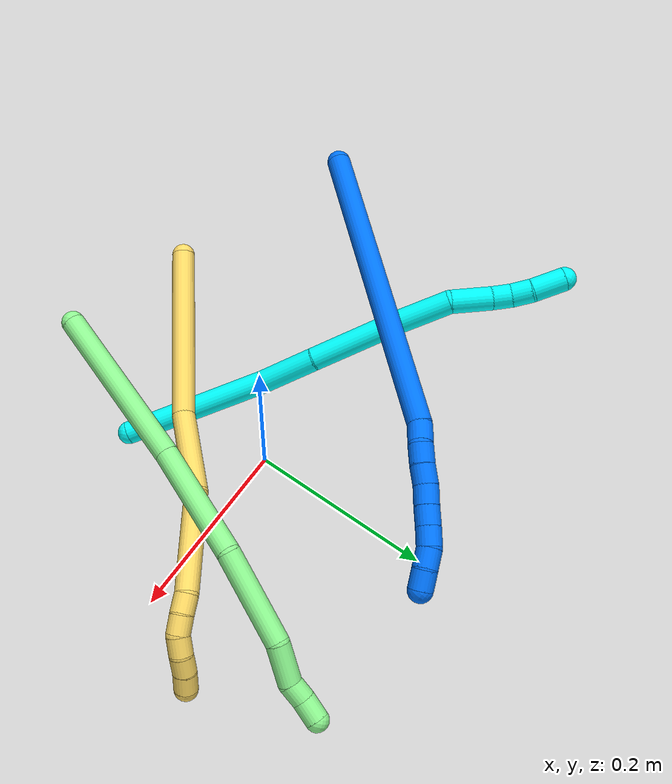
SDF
<sdf version="1.7">
 <world name="default">
  <model name="3">
   <static>0</static>
   <link name="3">
    <collision name="collision-cylinder-e_1_1_4">
     <pose>-0.04315 0.051073 0.043244 -0.868223 -0.572697 0.271332</pose>
     <geometry><cylinder><radius>0.0125</radius><length>0.159253</length></cylinder></geometry>
     <surface>
      <friction><ode><mu>1.16</mu><mu2>1.16</mu2><slip1>0</slip1><slip2>0</slip2></ode></friction>
      <contact><ode><kp>1e+06</kp><kd>1</kd><max_vel>0</max_vel><min_depth>0.001</min_depth></ode></contact>
     </surface>
    </collision>
    <visual name="visual-cylinder-e_1_1_4">
     <pose>-0.04315 0.051073 0.043244 -0.868223 -0.572697 0.271332</pose>
     <geometry><cylinder><radius>0.0125</radius><length>0.159253</length></cylinder></geometry>
     <material><ambient>0.003922 1 0.996078 1</ambient></material>
    </visual>
    <collision name="collision-cylinder-e_2_4_5">
     <pose>-0.100035 0.125413 0.102408 -0.970688 -0.453358 0.242103</pose>
     <geometry><cylinder><radius>0.0125</radius><length>0.062722</length></cylinder></geometry>
     <surface>
      <friction><ode><mu>1.16</mu><mu2>1.16</mu2><slip1>0</slip1><slip2>0</slip2></ode></friction>
      <contact><ode><kp>1e+06</kp><kd>1</kd><max_vel>0</max_vel><min_depth>0.001</min_depth></ode></contact>
     </surface>
    </collision>
    <visual name="visual-cylinder-e_2_4_5">
     <pose>-0.100035 0.125413 0.102408 -0.970688 -0.453358 0.242103</pose>
     <geometry><cylinder><radius>0.0125</radius><length>0.062722</length></cylinder></geometry>
     <material><ambient>0.003922 1 0.996078 1</ambient></material>
    </visual>
    <collision name="collision-cylinder-e_3_5_6">
     <pose>-0.13744 0.180108 0.145463 -0.858603 -0.51813 0.24146</pose>
     <geometry><cylinder><radius>0.0125</radius><length>0.095587</length></cylinder></geometry>
     <surface>
      <friction><ode><mu>1.16</mu><mu2>1.16</mu2><slip1>0</slip1><slip2>0</slip2></ode></friction>
      <contact><ode><kp>1e+06</kp><kd>1</kd><max_vel>0</max_vel><min_depth>0.001</min_depth></ode></contact>
     </surface>
    </collision>
    <visual name="visual-cylinder-e_3_5_6">
     <pose>-0.13744 0.180108 0.145463 -0.858603 -0.51813 0.24146</pose>
     <geometry><cylinder><radius>0.0125</radius><length>0.095587</length></cylinder></geometry>
     <material><ambient>0.003922 1 0.996078 1</ambient></material>
    </visual>
    <collision name="collision-cylinder-e_4_6_7">
     <pose>-0.176589 0.23217 0.188396 -0.917323 -0.537195 0.270171</pose>
     <geometry><cylinder><radius>0.0125</radius><length>0.060496</length></cylinder></geometry>
     <surface>
      <friction><ode><mu>1.16</mu><mu2>1.16</mu2><slip1>0</slip1><slip2>0</slip2></ode></friction>
      <contact><ode><kp>1e+06</kp><kd>1</kd><max_vel>0</max_vel><min_depth>0.001</min_depth></ode></contact>
     </surface>
    </collision>
    <visual name="visual-cylinder-e_4_6_7">
     <pose>-0.176589 0.23217 0.188396 -0.917323 -0.537195 0.270171</pose>
     <geometry><cylinder><radius>0.0125</radius><length>0.060496</length></cylinder></geometry>
     <material><ambient>0.003922 1 0.996078 1</ambient></material>
    </visual>
    <collision name="collision-cylinder-e_5_7_8">
     <pose>-0.209404 0.26258 0.21348 -0.811181 -0.909745 0.414003</pose>
     <geometry><cylinder><radius>0.0125</radius><length>0.043924</length></cylinder></geometry>
     <surface>
      <friction><ode><mu>1.16</mu><mu2>1.16</mu2><slip1>0</slip1><slip2>0</slip2></ode></friction>
      <contact><ode><kp>1e+06</kp><kd>1</kd><max_vel>0</max_vel><min_depth>0.001</min_depth></ode></contact>
     </surface>
    </collision>
    <visual name="visual-cylinder-e_5_7_8">
     <pose>-0.209404 0.26258 0.21348 -0.811181 -0.909745 0.414003</pose>
     <geometry><cylinder><radius>0.0125</radius><length>0.043924</length></cylinder></geometry>
     <material><ambient>0.003922 1 0.996078 1</ambient></material>
    </visual>
    <collision name="collision-cylinder-e_6_8_9">
     <pose>-0.234514 0.277788 0.227289 -0.876332 -0.833021 0.408771</pose>
     <geometry><cylinder><radius>0.0125</radius><length>0.021015</length></cylinder></geometry>
     <surface>
      <friction><ode><mu>1.16</mu><mu2>1.16</mu2><slip1>0</slip1><slip2>0</slip2></ode></friction>
      <contact><ode><kp>1e+06</kp><kd>1</kd><max_vel>0</max_vel><min_depth>0.001</min_depth></ode></contact>
     </surface>
    </collision>
    <visual name="visual-cylinder-e_6_8_9">
     <pose>-0.234514 0.277788 0.227289 -0.876332 -0.833021 0.408771</pose>
     <geometry><cylinder><radius>0.0125</radius><length>0.021015</length></cylinder></geometry>
     <material><ambient>0.003922 1 0.996078 1</ambient></material>
    </visual>
    <collision name="collision-cylinder-e_7_9_10">
     <pose>-0.248955 0.290597 0.236529 -1.00197 -0.650598 0.365262</pose>
     <geometry><cylinder><radius>0.0125</radius><length>0.022012</length></cylinder></geometry>
     <surface>
      <friction><ode><mu>1.16</mu><mu2>1.16</mu2><slip1>0</slip1><slip2>0</slip2></ode></friction>
      <contact><ode><kp>1e+06</kp><kd>1</kd><max_vel>0</max_vel><min_depth>0.001</min_depth></ode></contact>
     </surface>
    </collision>
    <visual name="visual-cylinder-e_7_9_10">
     <pose>-0.248955 0.290597 0.236529 -1.00197 -0.650598 0.365262</pose>
     <geometry><cylinder><radius>0.0125</radius><length>0.022012</length></cylinder></geometry>
     <material><ambient>0.003922 1 0.996078 1</ambient></material>
    </visual>
    <collision name="collision-cylinder-e_8_10_2">
     <pose>-0.265994 0.307847 0.2513 -0.776215 -0.634619 0.266937</pose>
     <geometry><cylinder><radius>0.0125</radius><length>0.034992</length></cylinder></geometry>
     <surface>
      <friction><ode><mu>1.16</mu><mu2>1.16</mu2><slip1>0</slip1><slip2>0</slip2></ode></friction>
      <contact><ode><kp>1e+06</kp><kd>1</kd><max_vel>0</max_vel><min_depth>0.001</min_depth></ode></contact>
     </surface>
    </collision>
    <visual name="visual-cylinder-e_8_10_2">
     <pose>-0.265994 0.307847 0.2513 -0.776215 -0.634619 0.266937</pose>
     <geometry><cylinder><radius>0.0125</radius><length>0.034992</length></cylinder></geometry>
     <material><ambient>0.003922 1 0.996078 1</ambient></material>
    </visual>
    <collision name="collision-sphere-2">
     <pose>-0.276367 0.317718 0.261354 0 -0 0</pose>
     <geometry><sphere><radius>0.0125</radius></sphere></geometry>
     <surface>
      <friction><ode><mu>1.16</mu><mu2>1.16</mu2><slip1>0</slip1><slip2>0</slip2></ode></friction>
      <contact><ode><kp>1e+06</kp><kd>1</kd><max_vel>0</max_vel><min_depth>0.001</min_depth></ode></contact>
     </surface>
    </collision>
    <visual name="visual-sphere-2">
     <pose>-0.276367 0.317718 0.261354 0 -0 0</pose>
     <geometry><sphere><radius>0.0125</radius></sphere></geometry>
     <material><ambient>0.003922 1 0.996078 1</ambient></material>
    </visual>
    <collision name="collision-sphere-10">
     <pose>-0.255621 0.297976 0.241246 0 -0 0</pose>
     <geometry><sphere><radius>0.0125</radius></sphere></geometry>
     <surface>
      <friction><ode><mu>1.16</mu><mu2>1.16</mu2><slip1>0</slip1><slip2>0</slip2></ode></friction>
      <contact><ode><kp>1e+06</kp><kd>1</kd><max_vel>0</max_vel><min_depth>0.001</min_depth></ode></contact>
     </surface>
    </collision>
    <visual name="visual-sphere-10">
     <pose>-0.255621 0.297976 0.241246 0 -0 0</pose>
     <geometry><sphere><radius>0.0125</radius></sphere></geometry>
     <material><ambient>0.003922 1 0.996078 1</ambient></material>
    </visual>
    <collision name="collision-sphere-9">
     <pose>-0.242289 0.283219 0.231812 0 -0 0</pose>
     <geometry><sphere><radius>0.0125</radius></sphere></geometry>
     <surface>
      <friction><ode><mu>1.16</mu><mu2>1.16</mu2><slip1>0</slip1><slip2>0</slip2></ode></friction>
      <contact><ode><kp>1e+06</kp><kd>1</kd><max_vel>0</max_vel><min_depth>0.001</min_depth></ode></contact>
     </surface>
    </collision>
    <visual name="visual-sphere-9">
     <pose>-0.242289 0.283219 0.231812 0 -0 0</pose>
     <geometry><sphere><radius>0.0125</radius></sphere></geometry>
     <material><ambient>0.003922 1 0.996078 1</ambient></material>
    </visual>
    <collision name="collision-sphere-4">
     <pose>-0.086299 0.102146 0.086487 0 -0 0</pose>
     <geometry><sphere><radius>0.0125</radius></sphere></geometry>
     <surface>
      <friction><ode><mu>1.16</mu><mu2>1.16</mu2><slip1>0</slip1><slip2>0</slip2></ode></friction>
      <contact><ode><kp>1e+06</kp><kd>1</kd><max_vel>0</max_vel><min_depth>0.001</min_depth></ode></contact>
     </surface>
    </collision>
    <visual name="visual-sphere-4">
     <pose>-0.086299 0.102146 0.086487 0 -0 0</pose>
     <geometry><sphere><radius>0.0125</radius></sphere></geometry>
     <material><ambient>0.003922 1 0.996078 1</ambient></material>
    </visual>
    <collision name="collision-sphere-1">
     <geometry><sphere><radius>0.0125</radius></sphere></geometry>
     <surface>
      <friction><ode><mu>1.16</mu><mu2>1.16</mu2><slip1>0</slip1><slip2>0</slip2></ode></friction>
      <contact><ode><kp>1e+06</kp><kd>1</kd><max_vel>0</max_vel><min_depth>0.001</min_depth></ode></contact>
     </surface>
    </collision>
    <visual name="visual-sphere-1">
     <geometry><sphere><radius>0.0125</radius></sphere></geometry>
     <material><ambient>0.003922 1 0.996078 1</ambient></material>
    </visual>
    <collision name="collision-sphere-8">
     <pose>-0.226739 0.272357 0.222765 0 -0 0</pose>
     <geometry><sphere><radius>0.0125</radius></sphere></geometry>
     <surface>
      <friction><ode><mu>1.16</mu><mu2>1.16</mu2><slip1>0</slip1><slip2>0</slip2></ode></friction>
      <contact><ode><kp>1e+06</kp><kd>1</kd><max_vel>0</max_vel><min_depth>0.001</min_depth></ode></contact>
     </surface>
    </collision>
    <visual name="visual-sphere-8">
     <pose>-0.226739 0.272357 0.222765 0 -0 0</pose>
     <geometry><sphere><radius>0.0125</radius></sphere></geometry>
     <material><ambient>0.003922 1 0.996078 1</ambient></material>
    </visual>
    <collision name="collision-sphere-5">
     <pose>-0.11377 0.14868 0.11833 0 -0 0</pose>
     <geometry><sphere><radius>0.0125</radius></sphere></geometry>
     <surface>
      <friction><ode><mu>1.16</mu><mu2>1.16</mu2><slip1>0</slip1><slip2>0</slip2></ode></friction>
      <contact><ode><kp>1e+06</kp><kd>1</kd><max_vel>0</max_vel><min_depth>0.001</min_depth></ode></contact>
     </surface>
    </collision>
    <visual name="visual-sphere-5">
     <pose>-0.11377 0.14868 0.11833 0 -0 0</pose>
     <geometry><sphere><radius>0.0125</radius></sphere></geometry>
     <material><ambient>0.003922 1 0.996078 1</ambient></material>
    </visual>
    <collision name="collision-sphere-6">
     <pose>-0.161111 0.211536 0.172597 0 -0 0</pose>
     <geometry><sphere><radius>0.0125</radius></sphere></geometry>
     <surface>
      <friction><ode><mu>1.16</mu><mu2>1.16</mu2><slip1>0</slip1><slip2>0</slip2></ode></friction>
      <contact><ode><kp>1e+06</kp><kd>1</kd><max_vel>0</max_vel><min_depth>0.001</min_depth></ode></contact>
     </surface>
    </collision>
    <visual name="visual-sphere-6">
     <pose>-0.161111 0.211536 0.172597 0 -0 0</pose>
     <geometry><sphere><radius>0.0125</radius></sphere></geometry>
     <material><ambient>0.003922 1 0.996078 1</ambient></material>
    </visual>
    <collision name="collision-sphere-7">
     <pose>-0.192068 0.252803 0.204195 0 -0 0</pose>
     <geometry><sphere><radius>0.0125</radius></sphere></geometry>
     <surface>
      <friction><ode><mu>1.16</mu><mu2>1.16</mu2><slip1>0</slip1><slip2>0</slip2></ode></friction>
      <contact><ode><kp>1e+06</kp><kd>1</kd><max_vel>0</max_vel><min_depth>0.001</min_depth></ode></contact>
     </surface>
    </collision>
    <visual name="visual-sphere-7">
     <pose>-0.192068 0.252803 0.204195 0 -0 0</pose>
     <geometry><sphere><radius>0.0125</radius></sphere></geometry>
     <material><ambient>0.003922 1 0.996078 1</ambient></material>
    </visual>
    <inertial>
     <pose>-0.13176 0.163602 0.133529 0 -0 0</pose>
     <mass>0.5</mass>
     <inertia>
      <ixx>0.000476</ixx>
      <ixy>0</ixy>
      <ixz>0</ixz>
      <iyy>0.000482</iyy>
      <iyz>0</iyz>
      <izz>-3.3e-05</izz>
     </inertia>
    </inertial>
   </link>
   <pose>0.064981 -0.137674 0.011483 1.52683 -0.550868 -1.25095</pose>
  </model>
  <model name="5">
   <static>0</static>
   <link name="5">
    <collision name="collision-cylinder-e_1_1_4">
     <pose>0.093941 -0.005256 0.023952 0.216005 1.31546 0.167119</pose>
     <geometry><cylinder><radius>0.0125</radius><length>0.194177</length></cylinder></geometry>
     <surface>
      <friction><ode><mu>1.16</mu><mu2>1.16</mu2><slip1>0</slip1><slip2>0</slip2></ode></friction>
      <contact><ode><kp>1e+06</kp><kd>1</kd><max_vel>0</max_vel><min_depth>0.001</min_depth></ode></contact>
     </surface>
    </collision>
    <visual name="visual-cylinder-e_1_1_4">
     <pose>0.093941 -0.005256 0.023952 0.216005 1.31546 0.167119</pose>
     <geometry><cylinder><radius>0.0125</radius><length>0.194177</length></cylinder></geometry>
     <material><ambient>1 0.858824 0.4 1</ambient></material>
    </visual>
    <collision name="collision-cylinder-e_2_4_5">
     <pose>0.234051 -0.005757 0.052256 -0.829705 1.4321 -0.731889</pose>
     <geometry><cylinder><radius>0.0125</radius><length>0.093233</length></cylinder></geometry>
     <surface>
      <friction><ode><mu>1.16</mu><mu2>1.16</mu2><slip1>0</slip1><slip2>0</slip2></ode></friction>
      <contact><ode><kp>1e+06</kp><kd>1</kd><max_vel>0</max_vel><min_depth>0.001</min_depth></ode></contact>
     </surface>
    </collision>
    <visual name="visual-cylinder-e_2_4_5">
     <pose>0.234051 -0.005757 0.052256 -0.829705 1.4321 -0.731889</pose>
     <geometry><cylinder><radius>0.0125</radius><length>0.093233</length></cylinder></geometry>
     <material><ambient>1 0.858824 0.4 1</ambient></material>
    </visual>
    <collision name="collision-cylinder-e_3_5_6">
     <pose>0.332238 0.001792 0.074455 -0.15529 1.23653 -0.110566</pose>
     <geometry><cylinder><radius>0.0125</radius><length>0.110132</length></cylinder></geometry>
     <surface>
      <friction><ode><mu>1.16</mu><mu2>1.16</mu2><slip1>0</slip1><slip2>0</slip2></ode></friction>
      <contact><ode><kp>1e+06</kp><kd>1</kd><max_vel>0</max_vel><min_depth>0.001</min_depth></ode></contact>
     </surface>
    </collision>
    <visual name="visual-cylinder-e_3_5_6">
     <pose>0.332238 0.001792 0.074455 -0.15529 1.23653 -0.110566</pose>
     <geometry><cylinder><radius>0.0125</radius><length>0.110132</length></cylinder></geometry>
     <material><ambient>1 0.858824 0.4 1</ambient></material>
    </visual>
    <collision name="collision-cylinder-e_4_6_7">
     <pose>0.393187 0.002876 0.097194 0.33641 1.04512 0.19499</pose>
     <geometry><cylinder><radius>0.0125</radius><length>0.02065</length></cylinder></geometry>
     <surface>
      <friction><ode><mu>1.16</mu><mu2>1.16</mu2><slip1>0</slip1><slip2>0</slip2></ode></friction>
      <contact><ode><kp>1e+06</kp><kd>1</kd><max_vel>0</max_vel><min_depth>0.001</min_depth></ode></contact>
     </surface>
    </collision>
    <visual name="visual-cylinder-e_4_6_7">
     <pose>0.393187 0.002876 0.097194 0.33641 1.04512 0.19499</pose>
     <geometry><cylinder><radius>0.0125</radius><length>0.02065</length></cylinder></geometry>
     <material><ambient>1 0.858824 0.4 1</ambient></material>
    </visual>
    <collision name="collision-cylinder-e_5_7_8">
     <pose>0.410766 -0.002138 0.106583 0.633456 0.997703 0.353413</pose>
     <geometry><cylinder><radius>0.0125</radius><length>0.020585</length></cylinder></geometry>
     <surface>
      <friction><ode><mu>1.16</mu><mu2>1.16</mu2><slip1>0</slip1><slip2>0</slip2></ode></friction>
      <contact><ode><kp>1e+06</kp><kd>1</kd><max_vel>0</max_vel><min_depth>0.001</min_depth></ode></contact>
     </surface>
    </collision>
    <visual name="visual-cylinder-e_5_7_8">
     <pose>0.410766 -0.002138 0.106583 0.633456 0.997703 0.353413</pose>
     <geometry><cylinder><radius>0.0125</radius><length>0.020585</length></cylinder></geometry>
     <material><ambient>1 0.858824 0.4 1</ambient></material>
    </visual>
    <collision name="collision-cylinder-e_6_8_9">
     <pose>0.428135 -0.010966 0.112241 1.36377 0.996394 0.831665</pose>
     <geometry><cylinder><radius>0.0125</radius><length>0.020777</length></cylinder></geometry>
     <surface>
      <friction><ode><mu>1.16</mu><mu2>1.16</mu2><slip1>0</slip1><slip2>0</slip2></ode></friction>
      <contact><ode><kp>1e+06</kp><kd>1</kd><max_vel>0</max_vel><min_depth>0.001</min_depth></ode></contact>
     </surface>
    </collision>
    <visual name="visual-cylinder-e_6_8_9">
     <pose>0.428135 -0.010966 0.112241 1.36377 0.996394 0.831665</pose>
     <geometry><cylinder><radius>0.0125</radius><length>0.020777</length></cylinder></geometry>
     <material><ambient>1 0.858824 0.4 1</ambient></material>
    </visual>
    <collision name="collision-cylinder-e_7_9_10">
     <pose>0.443884 -0.023673 0.114122 1.4708 0.771956 0.704585</pose>
     <geometry><cylinder><radius>0.0125</radius><length>0.020151</length></cylinder></geometry>
     <surface>
      <friction><ode><mu>1.16</mu><mu2>1.16</mu2><slip1>0</slip1><slip2>0</slip2></ode></friction>
      <contact><ode><kp>1e+06</kp><kd>1</kd><max_vel>0</max_vel><min_depth>0.001</min_depth></ode></contact>
     </surface>
    </collision>
    <visual name="visual-cylinder-e_7_9_10">
     <pose>0.443884 -0.023673 0.114122 1.4708 0.771956 0.704585</pose>
     <geometry><cylinder><radius>0.0125</radius><length>0.020151</length></cylinder></geometry>
     <material><ambient>1 0.858824 0.4 1</ambient></material>
    </visual>
    <collision name="collision-cylinder-e_8_10_2">
     <pose>0.457419 -0.038431 0.116648 1.33682 0.696137 0.558097</pose>
     <geometry><cylinder><radius>0.0125</radius><length>0.020295</length></cylinder></geometry>
     <surface>
      <friction><ode><mu>1.16</mu><mu2>1.16</mu2><slip1>0</slip1><slip2>0</slip2></ode></friction>
      <contact><ode><kp>1e+06</kp><kd>1</kd><max_vel>0</max_vel><min_depth>0.001</min_depth></ode></contact>
     </surface>
    </collision>
    <visual name="visual-cylinder-e_8_10_2">
     <pose>0.457419 -0.038431 0.116648 1.33682 0.696137 0.558097</pose>
     <geometry><cylinder><radius>0.0125</radius><length>0.020295</length></cylinder></geometry>
     <material><ambient>1 0.858824 0.4 1</ambient></material>
    </visual>
    <collision name="collision-sphere-2">
     <pose>0.463926 -0.046005 0.118453 0 -0 0</pose>
     <geometry><sphere><radius>0.0125</radius></sphere></geometry>
     <surface>
      <friction><ode><mu>1.16</mu><mu2>1.16</mu2><slip1>0</slip1><slip2>0</slip2></ode></friction>
      <contact><ode><kp>1e+06</kp><kd>1</kd><max_vel>0</max_vel><min_depth>0.001</min_depth></ode></contact>
     </surface>
    </collision>
    <visual name="visual-sphere-2">
     <pose>0.463926 -0.046005 0.118453 0 -0 0</pose>
     <geometry><sphere><radius>0.0125</radius></sphere></geometry>
     <material><ambient>1 0.858824 0.4 1</ambient></material>
    </visual>
    <collision name="collision-sphere-10">
     <pose>0.450912 -0.030857 0.114843 0 -0 0</pose>
     <geometry><sphere><radius>0.0125</radius></sphere></geometry>
     <surface>
      <friction><ode><mu>1.16</mu><mu2>1.16</mu2><slip1>0</slip1><slip2>0</slip2></ode></friction>
      <contact><ode><kp>1e+06</kp><kd>1</kd><max_vel>0</max_vel><min_depth>0.001</min_depth></ode></contact>
     </surface>
    </collision>
    <visual name="visual-sphere-10">
     <pose>0.450912 -0.030857 0.114843 0 -0 0</pose>
     <geometry><sphere><radius>0.0125</radius></sphere></geometry>
     <material><ambient>1 0.858824 0.4 1</ambient></material>
    </visual>
    <collision name="collision-sphere-9">
     <pose>0.436856 -0.016489 0.113401 0 -0 0</pose>
     <geometry><sphere><radius>0.0125</radius></sphere></geometry>
     <surface>
      <friction><ode><mu>1.16</mu><mu2>1.16</mu2><slip1>0</slip1><slip2>0</slip2></ode></friction>
      <contact><ode><kp>1e+06</kp><kd>1</kd><max_vel>0</max_vel><min_depth>0.001</min_depth></ode></contact>
     </surface>
    </collision>
    <visual name="visual-sphere-9">
     <pose>0.436856 -0.016489 0.113401 0 -0 0</pose>
     <geometry><sphere><radius>0.0125</radius></sphere></geometry>
     <material><ambient>1 0.858824 0.4 1</ambient></material>
    </visual>
    <collision name="collision-sphere-4">
     <pose>0.187882 -0.010512 0.047905 0 -0 0</pose>
     <geometry><sphere><radius>0.0125</radius></sphere></geometry>
     <surface>
      <friction><ode><mu>1.16</mu><mu2>1.16</mu2><slip1>0</slip1><slip2>0</slip2></ode></friction>
      <contact><ode><kp>1e+06</kp><kd>1</kd><max_vel>0</max_vel><min_depth>0.001</min_depth></ode></contact>
     </surface>
    </collision>
    <visual name="visual-sphere-4">
     <pose>0.187882 -0.010512 0.047905 0 -0 0</pose>
     <geometry><sphere><radius>0.0125</radius></sphere></geometry>
     <material><ambient>1 0.858824 0.4 1</ambient></material>
    </visual>
    <collision name="collision-sphere-1">
     <geometry><sphere><radius>0.0125</radius></sphere></geometry>
     <surface>
      <friction><ode><mu>1.16</mu><mu2>1.16</mu2><slip1>0</slip1><slip2>0</slip2></ode></friction>
      <contact><ode><kp>1e+06</kp><kd>1</kd><max_vel>0</max_vel><min_depth>0.001</min_depth></ode></contact>
     </surface>
    </collision>
    <visual name="visual-sphere-1">
     <geometry><sphere><radius>0.0125</radius></sphere></geometry>
     <material><ambient>1 0.858824 0.4 1</ambient></material>
    </visual>
    <collision name="collision-sphere-8">
     <pose>0.419414 -0.005442 0.111081 0 -0 0</pose>
     <geometry><sphere><radius>0.0125</radius></sphere></geometry>
     <surface>
      <friction><ode><mu>1.16</mu><mu2>1.16</mu2><slip1>0</slip1><slip2>0</slip2></ode></friction>
      <contact><ode><kp>1e+06</kp><kd>1</kd><max_vel>0</max_vel><min_depth>0.001</min_depth></ode></contact>
     </surface>
    </collision>
    <visual name="visual-sphere-8">
     <pose>0.419414 -0.005442 0.111081 0 -0 0</pose>
     <geometry><sphere><radius>0.0125</radius></sphere></geometry>
     <material><ambient>1 0.858824 0.4 1</ambient></material>
    </visual>
    <collision name="collision-sphere-5">
     <pose>0.28022 -0.001003 0.056606 0 -0 0</pose>
     <geometry><sphere><radius>0.0125</radius></sphere></geometry>
     <surface>
      <friction><ode><mu>1.16</mu><mu2>1.16</mu2><slip1>0</slip1><slip2>0</slip2></ode></friction>
      <contact><ode><kp>1e+06</kp><kd>1</kd><max_vel>0</max_vel><min_depth>0.001</min_depth></ode></contact>
     </surface>
    </collision>
    <visual name="visual-sphere-5">
     <pose>0.28022 -0.001003 0.056606 0 -0 0</pose>
     <geometry><sphere><radius>0.0125</radius></sphere></geometry>
     <material><ambient>1 0.858824 0.4 1</ambient></material>
    </visual>
    <collision name="collision-sphere-6">
     <pose>0.384256 0.004586 0.092304 0 -0 0</pose>
     <geometry><sphere><radius>0.0125</radius></sphere></geometry>
     <surface>
      <friction><ode><mu>1.16</mu><mu2>1.16</mu2><slip1>0</slip1><slip2>0</slip2></ode></friction>
      <contact><ode><kp>1e+06</kp><kd>1</kd><max_vel>0</max_vel><min_depth>0.001</min_depth></ode></contact>
     </surface>
    </collision>
    <visual name="visual-sphere-6">
     <pose>0.384256 0.004586 0.092304 0 -0 0</pose>
     <geometry><sphere><radius>0.0125</radius></sphere></geometry>
     <material><ambient>1 0.858824 0.4 1</ambient></material>
    </visual>
    <collision name="collision-sphere-7">
     <pose>0.402118 0.001165 0.102085 0 -0 0</pose>
     <geometry><sphere><radius>0.0125</radius></sphere></geometry>
     <surface>
      <friction><ode><mu>1.16</mu><mu2>1.16</mu2><slip1>0</slip1><slip2>0</slip2></ode></friction>
      <contact><ode><kp>1e+06</kp><kd>1</kd><max_vel>0</max_vel><min_depth>0.001</min_depth></ode></contact>
     </surface>
    </collision>
    <visual name="visual-sphere-7">
     <pose>0.402118 0.001165 0.102085 0 -0 0</pose>
     <geometry><sphere><radius>0.0125</radius></sphere></geometry>
     <material><ambient>1 0.858824 0.4 1</ambient></material>
    </visual>
    <inertial>
     <pose>0.240701 -0.005659 0.057846 0 -0 0</pose>
     <mass>0.5</mass>
     <inertia>
      <ixx>0.000257</ixx>
      <ixy>0</ixy>
      <ixz>0</ixz>
      <iyy>0.000822</iyy>
      <iyz>0</iyz>
      <izz>-0.00075</izz>
     </inertia>
    </inertial>
   </link>
   <pose>-0.125117 -0.205118 0.069502 1.5964 0.017914 0.910253</pose>
  </model>
  <model name="13">
   <static>0</static>
   <link name="13">
    <collision name="collision-cylinder-e_1_1_4">
     <pose>0.014564 0.073456 -0.052836 -2.19435 0.159587 -0.309538</pose>
     <geometry><cylinder><radius>0.0125</radius><length>0.183299</length></cylinder></geometry>
     <surface>
      <friction><ode><mu>1.16</mu><mu2>1.16</mu2><slip1>0</slip1><slip2>0</slip2></ode></friction>
      <contact><ode><kp>1e+06</kp><kd>1</kd><max_vel>0</max_vel><min_depth>0.001</min_depth></ode></contact>
     </surface>
    </collision>
    <visual name="visual-cylinder-e_1_1_4">
     <pose>0.014564 0.073456 -0.052836 -2.19435 0.159587 -0.309538</pose>
     <geometry><cylinder><radius>0.0125</radius><length>0.183299</length></cylinder></geometry>
     <material><ambient>0.564706 0.984314 0.572549 1</ambient></material>
    </visual>
    <collision name="collision-cylinder-e_2_4_5">
     <pose>0.047708 0.195863 -0.14236 -2.21397 0.294882 -0.57725</pose>
     <geometry><cylinder><radius>0.0125</radius><length>0.127864</length></cylinder></geometry>
     <surface>
      <friction><ode><mu>1.16</mu><mu2>1.16</mu2><slip1>0</slip1><slip2>0</slip2></ode></friction>
      <contact><ode><kp>1e+06</kp><kd>1</kd><max_vel>0</max_vel><min_depth>0.001</min_depth></ode></contact>
     </surface>
    </collision>
    <visual name="visual-cylinder-e_2_4_5">
     <pose>0.047708 0.195863 -0.14236 -2.21397 0.294882 -0.57725</pose>
     <geometry><cylinder><radius>0.0125</radius><length>0.127864</length></cylinder></geometry>
     <material><ambient>0.564706 0.984314 0.572549 1</ambient></material>
    </visual>
    <collision name="collision-cylinder-e_3_5_6">
     <pose>0.065289 0.279984 -0.214808 -2.3645 -0.019921 0.048656</pose>
     <geometry><cylinder><radius>0.0125</radius><length>0.100337</length></cylinder></geometry>
     <surface>
      <friction><ode><mu>1.16</mu><mu2>1.16</mu2><slip1>0</slip1><slip2>0</slip2></ode></friction>
      <contact><ode><kp>1e+06</kp><kd>1</kd><max_vel>0</max_vel><min_depth>0.001</min_depth></ode></contact>
     </surface>
    </collision>
    <visual name="visual-cylinder-e_3_5_6">
     <pose>0.065289 0.279984 -0.214808 -2.3645 -0.019921 0.048656</pose>
     <geometry><cylinder><radius>0.0125</radius><length>0.100337</length></cylinder></geometry>
     <material><ambient>0.564706 0.984314 0.572549 1</ambient></material>
    </visual>
    <collision name="collision-cylinder-e_4_6_7">
     <pose>0.059063 0.325348 -0.268858 -2.63317 -0.244666 0.883914</pose>
     <geometry><cylinder><radius>0.0125</radius><length>0.043161</length></cylinder></geometry>
     <surface>
      <friction><ode><mu>1.16</mu><mu2>1.16</mu2><slip1>0</slip1><slip2>0</slip2></ode></friction>
      <contact><ode><kp>1e+06</kp><kd>1</kd><max_vel>0</max_vel><min_depth>0.001</min_depth></ode></contact>
     </surface>
    </collision>
    <visual name="visual-cylinder-e_4_6_7">
     <pose>0.059063 0.325348 -0.268858 -2.63317 -0.244666 0.883914</pose>
     <geometry><cylinder><radius>0.0125</radius><length>0.043161</length></cylinder></geometry>
     <material><ambient>0.564706 0.984314 0.572549 1</ambient></material>
    </visual>
    <collision name="collision-cylinder-e_5_7_8">
     <pose>0.051612 0.343654 -0.293364 -2.22455 -0.214147 0.428809</pose>
     <geometry><cylinder><radius>0.0125</radius><length>0.020919</length></cylinder></geometry>
     <surface>
      <friction><ode><mu>1.16</mu><mu2>1.16</mu2><slip1>0</slip1><slip2>0</slip2></ode></friction>
      <contact><ode><kp>1e+06</kp><kd>1</kd><max_vel>0</max_vel><min_depth>0.001</min_depth></ode></contact>
     </surface>
    </collision>
    <visual name="visual-cylinder-e_5_7_8">
     <pose>0.051612 0.343654 -0.293364 -2.22455 -0.214147 0.428809</pose>
     <geometry><cylinder><radius>0.0125</radius><length>0.020919</length></cylinder></geometry>
     <material><ambient>0.564706 0.984314 0.572549 1</ambient></material>
    </visual>
    <collision name="collision-cylinder-e_6_8_2">
     <pose>0.048519 0.360955 -0.307575 -2.28692 -0.071331 0.156381</pose>
     <geometry><cylinder><radius>0.0125</radius><length>0.02442</length></cylinder></geometry>
     <surface>
      <friction><ode><mu>1.16</mu><mu2>1.16</mu2><slip1>0</slip1><slip2>0</slip2></ode></friction>
      <contact><ode><kp>1e+06</kp><kd>1</kd><max_vel>0</max_vel><min_depth>0.001</min_depth></ode></contact>
     </surface>
    </collision>
    <visual name="visual-cylinder-e_6_8_2">
     <pose>0.048519 0.360955 -0.307575 -2.28692 -0.071331 0.156381</pose>
     <geometry><cylinder><radius>0.0125</radius><length>0.02442</length></cylinder></geometry>
     <material><ambient>0.564706 0.984314 0.572549 1</ambient></material>
    </visual>
    <collision name="collision-sphere-2">
     <pose>0.047649 0.370142 -0.31557 0 -0 0</pose>
     <geometry><sphere><radius>0.0125</radius></sphere></geometry>
     <surface>
      <friction><ode><mu>1.16</mu><mu2>1.16</mu2><slip1>0</slip1><slip2>0</slip2></ode></friction>
      <contact><ode><kp>1e+06</kp><kd>1</kd><max_vel>0</max_vel><min_depth>0.001</min_depth></ode></contact>
     </surface>
    </collision>
    <visual name="visual-sphere-2">
     <pose>0.047649 0.370142 -0.31557 0 -0 0</pose>
     <geometry><sphere><radius>0.0125</radius></sphere></geometry>
     <material><ambient>0.564706 0.984314 0.572549 1</ambient></material>
    </visual>
    <collision name="collision-sphere-4">
     <pose>0.029128 0.146913 -0.105673 0 -0 0</pose>
     <geometry><sphere><radius>0.0125</radius></sphere></geometry>
     <surface>
      <friction><ode><mu>1.16</mu><mu2>1.16</mu2><slip1>0</slip1><slip2>0</slip2></ode></friction>
      <contact><ode><kp>1e+06</kp><kd>1</kd><max_vel>0</max_vel><min_depth>0.001</min_depth></ode></contact>
     </surface>
    </collision>
    <visual name="visual-sphere-4">
     <pose>0.029128 0.146913 -0.105673 0 -0 0</pose>
     <geometry><sphere><radius>0.0125</radius></sphere></geometry>
     <material><ambient>0.564706 0.984314 0.572549 1</ambient></material>
    </visual>
    <collision name="collision-sphere-1">
     <geometry><sphere><radius>0.0125</radius></sphere></geometry>
     <surface>
      <friction><ode><mu>1.16</mu><mu2>1.16</mu2><slip1>0</slip1><slip2>0</slip2></ode></friction>
      <contact><ode><kp>1e+06</kp><kd>1</kd><max_vel>0</max_vel><min_depth>0.001</min_depth></ode></contact>
     </surface>
    </collision>
    <visual name="visual-sphere-1">
     <geometry><sphere><radius>0.0125</radius></sphere></geometry>
     <material><ambient>0.564706 0.984314 0.572549 1</ambient></material>
    </visual>
    <collision name="collision-sphere-8">
     <pose>0.049389 0.351767 -0.29958 0 -0 0</pose>
     <geometry><sphere><radius>0.0125</radius></sphere></geometry>
     <surface>
      <friction><ode><mu>1.16</mu><mu2>1.16</mu2><slip1>0</slip1><slip2>0</slip2></ode></friction>
      <contact><ode><kp>1e+06</kp><kd>1</kd><max_vel>0</max_vel><min_depth>0.001</min_depth></ode></contact>
     </surface>
    </collision>
    <visual name="visual-sphere-8">
     <pose>0.049389 0.351767 -0.29958 0 -0 0</pose>
     <geometry><sphere><radius>0.0125</radius></sphere></geometry>
     <material><ambient>0.564706 0.984314 0.572549 1</ambient></material>
    </visual>
    <collision name="collision-sphere-5">
     <pose>0.066289 0.244813 -0.179048 0 -0 0</pose>
     <geometry><sphere><radius>0.0125</radius></sphere></geometry>
     <surface>
      <friction><ode><mu>1.16</mu><mu2>1.16</mu2><slip1>0</slip1><slip2>0</slip2></ode></friction>
      <contact><ode><kp>1e+06</kp><kd>1</kd><max_vel>0</max_vel><min_depth>0.001</min_depth></ode></contact>
     </surface>
    </collision>
    <visual name="visual-sphere-5">
     <pose>0.066289 0.244813 -0.179048 0 -0 0</pose>
     <geometry><sphere><radius>0.0125</radius></sphere></geometry>
     <material><ambient>0.564706 0.984314 0.572549 1</ambient></material>
    </visual>
    <collision name="collision-sphere-6">
     <pose>0.06429 0.315156 -0.250569 0 -0 0</pose>
     <geometry><sphere><radius>0.0125</radius></sphere></geometry>
     <surface>
      <friction><ode><mu>1.16</mu><mu2>1.16</mu2><slip1>0</slip1><slip2>0</slip2></ode></friction>
      <contact><ode><kp>1e+06</kp><kd>1</kd><max_vel>0</max_vel><min_depth>0.001</min_depth></ode></contact>
     </surface>
    </collision>
    <visual name="visual-sphere-6">
     <pose>0.06429 0.315156 -0.250569 0 -0 0</pose>
     <geometry><sphere><radius>0.0125</radius></sphere></geometry>
     <material><ambient>0.564706 0.984314 0.572549 1</ambient></material>
    </visual>
    <collision name="collision-sphere-7">
     <pose>0.053835 0.335541 -0.287148 0 -0 0</pose>
     <geometry><sphere><radius>0.0125</radius></sphere></geometry>
     <surface>
      <friction><ode><mu>1.16</mu><mu2>1.16</mu2><slip1>0</slip1><slip2>0</slip2></ode></friction>
      <contact><ode><kp>1e+06</kp><kd>1</kd><max_vel>0</max_vel><min_depth>0.001</min_depth></ode></contact>
     </surface>
    </collision>
    <visual name="visual-sphere-7">
     <pose>0.053835 0.335541 -0.287148 0 -0 0</pose>
     <geometry><sphere><radius>0.0125</radius></sphere></geometry>
     <material><ambient>0.564706 0.984314 0.572549 1</ambient></material>
    </visual>
    <inertial>
     <pose>0.040269 0.193294 -0.149386 0 -0 0</pose>
     <mass>0.5</mass>
     <inertia>
      <ixx>0.000495</ixx>
      <ixy>0</ixy>
      <ixz>0</ixz>
      <iyy>-0.000615</iyy>
      <iyz>0</iyz>
      <izz>-0.000778</izz>
     </inertia>
    </inertial>
   </link>
   <pose>0.023343 -0.235443 0.095411 0.142854 -1.10143 0.174526</pose>
  </model>
  <model name="14">
   <static>0</static>
   <link name="14">
    <collision name="collision-cylinder-e_1_1_4">
     <pose>-0.044629 0.094488 -0.132605 -2.52249 -0.26752 0.796497</pose>
     <geometry><cylinder><radius>0.0125</radius><length>0.33766</length></cylinder></geometry>
     <surface>
      <friction><ode><mu>1.16</mu><mu2>1.16</mu2><slip1>0</slip1><slip2>0</slip2></ode></friction>
      <contact><ode><kp>1e+06</kp><kd>1</kd><max_vel>0</max_vel><min_depth>0.001</min_depth></ode></contact>
     </surface>
    </collision>
    <visual name="visual-cylinder-e_1_1_4">
     <pose>-0.044629 0.094488 -0.132605 -2.52249 -0.26752 0.796497</pose>
     <geometry><cylinder><radius>0.0125</radius><length>0.33766</length></cylinder></geometry>
     <material><ambient>0 0.462745 1 1</ambient></material>
    </visual>
    <collision name="collision-cylinder-e_2_4_5">
     <pose>-0.092657 0.196907 -0.271919 -2.27298 -0.316317 0.66236</pose>
     <geometry><cylinder><radius>0.0125</radius><length>0.021861</length></cylinder></geometry>
     <surface>
      <friction><ode><mu>1.16</mu><mu2>1.16</mu2><slip1>0</slip1><slip2>0</slip2></ode></friction>
      <contact><ode><kp>1e+06</kp><kd>1</kd><max_vel>0</max_vel><min_depth>0.001</min_depth></ode></contact>
     </surface>
    </collision>
    <visual name="visual-cylinder-e_2_4_5">
     <pose>-0.092657 0.196907 -0.271919 -2.27298 -0.316317 0.66236</pose>
     <geometry><cylinder><radius>0.0125</radius><length>0.021861</length></cylinder></geometry>
     <material><ambient>0 0.462745 1 1</ambient></material>
    </visual>
    <collision name="collision-cylinder-e_3_5_6">
     <pose>-0.09644 0.212068 -0.285828 -2.35407 -0.037465 0.090125</pose>
     <geometry><cylinder><radius>0.0125</radius><length>0.020422</length></cylinder></geometry>
     <surface>
      <friction><ode><mu>1.16</mu><mu2>1.16</mu2><slip1>0</slip1><slip2>0</slip2></ode></friction>
      <contact><ode><kp>1e+06</kp><kd>1</kd><max_vel>0</max_vel><min_depth>0.001</min_depth></ode></contact>
     </surface>
    </collision>
    <visual name="visual-cylinder-e_3_5_6">
     <pose>-0.09644 0.212068 -0.285828 -2.35407 -0.037465 0.090125</pose>
     <geometry><cylinder><radius>0.0125</radius><length>0.020422</length></cylinder></geometry>
     <material><ambient>0 0.462745 1 1</ambient></material>
    </visual>
    <collision name="collision-cylinder-e_4_6_7">
     <pose>-0.096702 0.225773 -0.300649 -2.43739 0.012093 -0.032911</pose>
     <geometry><cylinder><radius>0.0125</radius><length>0.02</length></cylinder></geometry>
     <surface>
      <friction><ode><mu>1.16</mu><mu2>1.16</mu2><slip1>0</slip1><slip2>0</slip2></ode></friction>
      <contact><ode><kp>1e+06</kp><kd>1</kd><max_vel>0</max_vel><min_depth>0.001</min_depth></ode></contact>
     </surface>
    </collision>
    <visual name="visual-cylinder-e_4_6_7">
     <pose>-0.096702 0.225773 -0.300649 -2.43739 0.012093 -0.032911</pose>
     <geometry><cylinder><radius>0.0125</radius><length>0.02</length></cylinder></geometry>
     <material><ambient>0 0.462745 1 1</ambient></material>
    </visual>
    <collision name="collision-cylinder-e_5_7_8">
     <pose>-0.097078 0.239661 -0.314986 -2.30684 -0.049655 0.111885</pose>
     <geometry><cylinder><radius>0.0125</radius><length>0.020034</length></cylinder></geometry>
     <surface>
      <friction><ode><mu>1.16</mu><mu2>1.16</mu2><slip1>0</slip1><slip2>0</slip2></ode></friction>
      <contact><ode><kp>1e+06</kp><kd>1</kd><max_vel>0</max_vel><min_depth>0.001</min_depth></ode></contact>
     </surface>
    </collision>
    <visual name="visual-cylinder-e_5_7_8">
     <pose>-0.097078 0.239661 -0.314986 -2.30684 -0.049655 0.111885</pose>
     <geometry><cylinder><radius>0.0125</radius><length>0.020034</length></cylinder></geometry>
     <material><ambient>0 0.462745 1 1</ambient></material>
    </visual>
    <collision name="collision-cylinder-e_6_8_9">
     <pose>-0.09801 0.254222 -0.32869 -2.34498 -0.043451 0.103184</pose>
     <geometry><cylinder><radius>0.0125</radius><length>0.020007</length></cylinder></geometry>
     <surface>
      <friction><ode><mu>1.16</mu><mu2>1.16</mu2><slip1>0</slip1><slip2>0</slip2></ode></friction>
      <contact><ode><kp>1e+06</kp><kd>1</kd><max_vel>0</max_vel><min_depth>0.001</min_depth></ode></contact>
     </surface>
    </collision>
    <visual name="visual-cylinder-e_6_8_9">
     <pose>-0.09801 0.254222 -0.32869 -2.34498 -0.043451 0.103184</pose>
     <geometry><cylinder><radius>0.0125</radius><length>0.020007</length></cylinder></geometry>
     <material><ambient>0 0.462745 1 1</ambient></material>
    </visual>
    <collision name="collision-cylinder-e_7_9_10">
     <pose>-0.099139 0.268734 -0.342415 -2.31159 -0.069463 0.157398</pose>
     <geometry><cylinder><radius>0.0125</radius><length>0.020015</length></cylinder></geometry>
     <surface>
      <friction><ode><mu>1.16</mu><mu2>1.16</mu2><slip1>0</slip1><slip2>0</slip2></ode></friction>
      <contact><ode><kp>1e+06</kp><kd>1</kd><max_vel>0</max_vel><min_depth>0.001</min_depth></ode></contact>
     </surface>
    </collision>
    <visual name="visual-cylinder-e_7_9_10">
     <pose>-0.099139 0.268734 -0.342415 -2.31159 -0.069463 0.157398</pose>
     <geometry><cylinder><radius>0.0125</radius><length>0.020015</length></cylinder></geometry>
     <material><ambient>0 0.462745 1 1</ambient></material>
    </visual>
    <collision name="collision-cylinder-e_8_10_11">
     <pose>-0.099502 0.284913 -0.353868 -2.06216 0.033147 -0.055324</pose>
     <geometry><cylinder><radius>0.0125</radius><length>0.02</length></cylinder></geometry>
     <surface>
      <friction><ode><mu>1.16</mu><mu2>1.16</mu2><slip1>0</slip1><slip2>0</slip2></ode></friction>
      <contact><ode><kp>1e+06</kp><kd>1</kd><max_vel>0</max_vel><min_depth>0.001</min_depth></ode></contact>
     </surface>
    </collision>
    <visual name="visual-cylinder-e_8_10_11">
     <pose>-0.099502 0.284913 -0.353868 -2.06216 0.033147 -0.055324</pose>
     <geometry><cylinder><radius>0.0125</radius><length>0.02</length></cylinder></geometry>
     <material><ambient>0 0.462745 1 1</ambient></material>
    </visual>
    <collision name="collision-cylinder-e_9_11_2">
     <pose>-0.097021 0.302274 -0.363307 -2.07557 0.216681 -0.364626</pose>
     <geometry><cylinder><radius>0.0125</radius><length>0.02</length></cylinder></geometry>
     <surface>
      <friction><ode><mu>1.16</mu><mu2>1.16</mu2><slip1>0</slip1><slip2>0</slip2></ode></friction>
      <contact><ode><kp>1e+06</kp><kd>1</kd><max_vel>0</max_vel><min_depth>0.001</min_depth></ode></contact>
     </surface>
    </collision>
    <visual name="visual-cylinder-e_9_11_2">
     <pose>-0.097021 0.302274 -0.363307 -2.07557 0.216681 -0.364626</pose>
     <geometry><cylinder><radius>0.0125</radius><length>0.02</length></cylinder></geometry>
     <material><ambient>0 0.462745 1 1</ambient></material>
    </visual>
    <collision name="collision-sphere-2">
     <pose>-0.094871 0.310822 -0.36803 0 -0 0</pose>
     <geometry><sphere><radius>0.0125</radius></sphere></geometry>
     <surface>
      <friction><ode><mu>1.16</mu><mu2>1.16</mu2><slip1>0</slip1><slip2>0</slip2></ode></friction>
      <contact><ode><kp>1e+06</kp><kd>1</kd><max_vel>0</max_vel><min_depth>0.001</min_depth></ode></contact>
     </surface>
    </collision>
    <visual name="visual-sphere-2">
     <pose>-0.094871 0.310822 -0.36803 0 -0 0</pose>
     <geometry><sphere><radius>0.0125</radius></sphere></geometry>
     <material><ambient>0 0.462745 1 1</ambient></material>
    </visual>
    <collision name="collision-sphere-11">
     <pose>-0.09917 0.293726 -0.358584 0 -0 0</pose>
     <geometry><sphere><radius>0.0125</radius></sphere></geometry>
     <surface>
      <friction><ode><mu>1.16</mu><mu2>1.16</mu2><slip1>0</slip1><slip2>0</slip2></ode></friction>
      <contact><ode><kp>1e+06</kp><kd>1</kd><max_vel>0</max_vel><min_depth>0.001</min_depth></ode></contact>
     </surface>
    </collision>
    <visual name="visual-sphere-11">
     <pose>-0.09917 0.293726 -0.358584 0 -0 0</pose>
     <geometry><sphere><radius>0.0125</radius></sphere></geometry>
     <material><ambient>0 0.462745 1 1</ambient></material>
    </visual>
    <collision name="collision-sphere-10">
     <pose>-0.099833 0.276101 -0.349153 0 -0 0</pose>
     <geometry><sphere><radius>0.0125</radius></sphere></geometry>
     <surface>
      <friction><ode><mu>1.16</mu><mu2>1.16</mu2><slip1>0</slip1><slip2>0</slip2></ode></friction>
      <contact><ode><kp>1e+06</kp><kd>1</kd><max_vel>0</max_vel><min_depth>0.001</min_depth></ode></contact>
     </surface>
    </collision>
    <visual name="visual-sphere-10">
     <pose>-0.099833 0.276101 -0.349153 0 -0 0</pose>
     <geometry><sphere><radius>0.0125</radius></sphere></geometry>
     <material><ambient>0 0.462745 1 1</ambient></material>
    </visual>
    <collision name="collision-sphere-9">
     <pose>-0.098444 0.261367 -0.335677 0 -0 0</pose>
     <geometry><sphere><radius>0.0125</radius></sphere></geometry>
     <surface>
      <friction><ode><mu>1.16</mu><mu2>1.16</mu2><slip1>0</slip1><slip2>0</slip2></ode></friction>
      <contact><ode><kp>1e+06</kp><kd>1</kd><max_vel>0</max_vel><min_depth>0.001</min_depth></ode></contact>
     </surface>
    </collision>
    <visual name="visual-sphere-9">
     <pose>-0.098444 0.261367 -0.335677 0 -0 0</pose>
     <geometry><sphere><radius>0.0125</radius></sphere></geometry>
     <material><ambient>0 0.462745 1 1</ambient></material>
    </visual>
    <collision name="collision-sphere-4">
     <pose>-0.089257 0.188976 -0.265209 0 -0 0</pose>
     <geometry><sphere><radius>0.0125</radius></sphere></geometry>
     <surface>
      <friction><ode><mu>1.16</mu><mu2>1.16</mu2><slip1>0</slip1><slip2>0</slip2></ode></friction>
      <contact><ode><kp>1e+06</kp><kd>1</kd><max_vel>0</max_vel><min_depth>0.001</min_depth></ode></contact>
     </surface>
    </collision>
    <visual name="visual-sphere-4">
     <pose>-0.089257 0.188976 -0.265209 0 -0 0</pose>
     <geometry><sphere><radius>0.0125</radius></sphere></geometry>
     <material><ambient>0 0.462745 1 1</ambient></material>
    </visual>
    <collision name="collision-sphere-1">
     <geometry><sphere><radius>0.0125</radius></sphere></geometry>
     <surface>
      <friction><ode><mu>1.16</mu><mu2>1.16</mu2><slip1>0</slip1><slip2>0</slip2></ode></friction>
      <contact><ode><kp>1e+06</kp><kd>1</kd><max_vel>0</max_vel><min_depth>0.001</min_depth></ode></contact>
     </surface>
    </collision>
    <visual name="visual-sphere-1">
     <geometry><sphere><radius>0.0125</radius></sphere></geometry>
     <material><ambient>0 0.462745 1 1</ambient></material>
    </visual>
    <collision name="collision-sphere-8">
     <pose>-0.097575 0.247076 -0.321703 0 -0 0</pose>
     <geometry><sphere><radius>0.0125</radius></sphere></geometry>
     <surface>
      <friction><ode><mu>1.16</mu><mu2>1.16</mu2><slip1>0</slip1><slip2>0</slip2></ode></friction>
      <contact><ode><kp>1e+06</kp><kd>1</kd><max_vel>0</max_vel><min_depth>0.001</min_depth></ode></contact>
     </surface>
    </collision>
    <visual name="visual-sphere-8">
     <pose>-0.097575 0.247076 -0.321703 0 -0 0</pose>
     <geometry><sphere><radius>0.0125</radius></sphere></geometry>
     <material><ambient>0 0.462745 1 1</ambient></material>
    </visual>
    <collision name="collision-sphere-5">
     <pose>-0.096058 0.204838 -0.278628 0 -0 0</pose>
     <geometry><sphere><radius>0.0125</radius></sphere></geometry>
     <surface>
      <friction><ode><mu>1.16</mu><mu2>1.16</mu2><slip1>0</slip1><slip2>0</slip2></ode></friction>
      <contact><ode><kp>1e+06</kp><kd>1</kd><max_vel>0</max_vel><min_depth>0.001</min_depth></ode></contact>
     </surface>
    </collision>
    <visual name="visual-sphere-5">
     <pose>-0.096058 0.204838 -0.278628 0 -0 0</pose>
     <geometry><sphere><radius>0.0125</radius></sphere></geometry>
     <material><ambient>0 0.462745 1 1</ambient></material>
    </visual>
    <collision name="collision-sphere-6">
     <pose>-0.096822 0.219299 -0.293028 0 -0 0</pose>
     <geometry><sphere><radius>0.0125</radius></sphere></geometry>
     <surface>
      <friction><ode><mu>1.16</mu><mu2>1.16</mu2><slip1>0</slip1><slip2>0</slip2></ode></friction>
      <contact><ode><kp>1e+06</kp><kd>1</kd><max_vel>0</max_vel><min_depth>0.001</min_depth></ode></contact>
     </surface>
    </collision>
    <visual name="visual-sphere-6">
     <pose>-0.096822 0.219299 -0.293028 0 -0 0</pose>
     <geometry><sphere><radius>0.0125</radius></sphere></geometry>
     <material><ambient>0 0.462745 1 1</ambient></material>
    </visual>
    <collision name="collision-sphere-7">
     <pose>-0.096581 0.232246 -0.308269 0 -0 0</pose>
     <geometry><sphere><radius>0.0125</radius></sphere></geometry>
     <surface>
      <friction><ode><mu>1.16</mu><mu2>1.16</mu2><slip1>0</slip1><slip2>0</slip2></ode></friction>
      <contact><ode><kp>1e+06</kp><kd>1</kd><max_vel>0</max_vel><min_depth>0.001</min_depth></ode></contact>
     </surface>
    </collision>
    <visual name="visual-sphere-7">
     <pose>-0.096581 0.232246 -0.308269 0 -0 0</pose>
     <geometry><sphere><radius>0.0125</radius></sphere></geometry>
     <material><ambient>0 0.462745 1 1</ambient></material>
    </visual>
    <inertial>
     <pose>-0.061638 0.144132 -0.193307 0 -0 0</pose>
     <mass>0.5</mass>
     <inertia>
      <ixx>0.004398</ixx>
      <ixy>0</ixy>
      <ixz>0</ixz>
      <iyy>0.000758</iyy>
      <iyz>0</iyz>
      <izz>-0.000989</izz>
     </inertia>
    </inertial>
   </link>
   <pose>-0.285167 -0.105918 0.144286 -0.853325 1.36193 -2.52374</pose>
  </model>
 </world>
</sdf>
